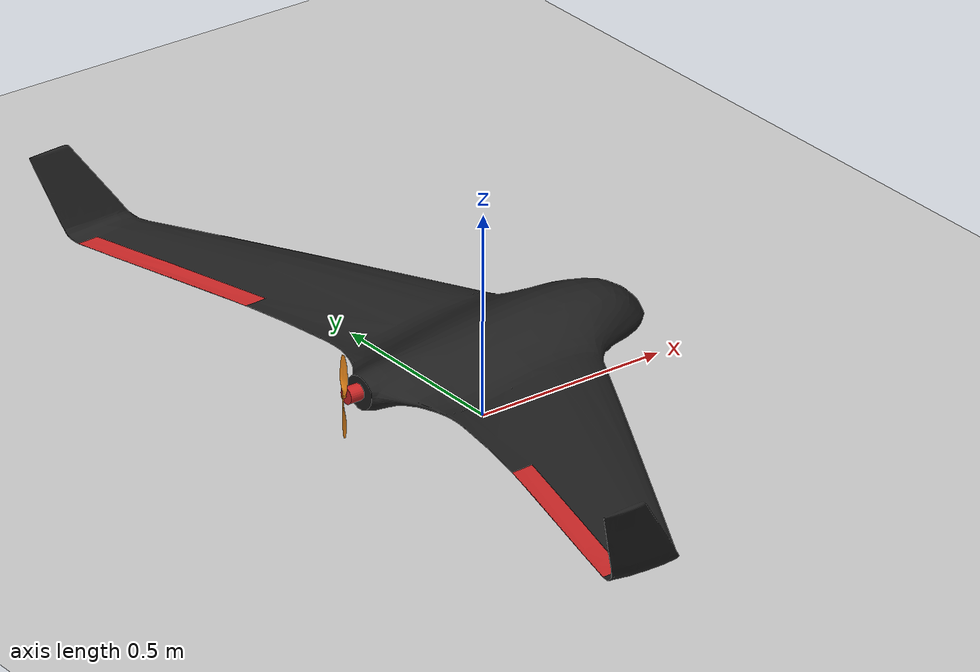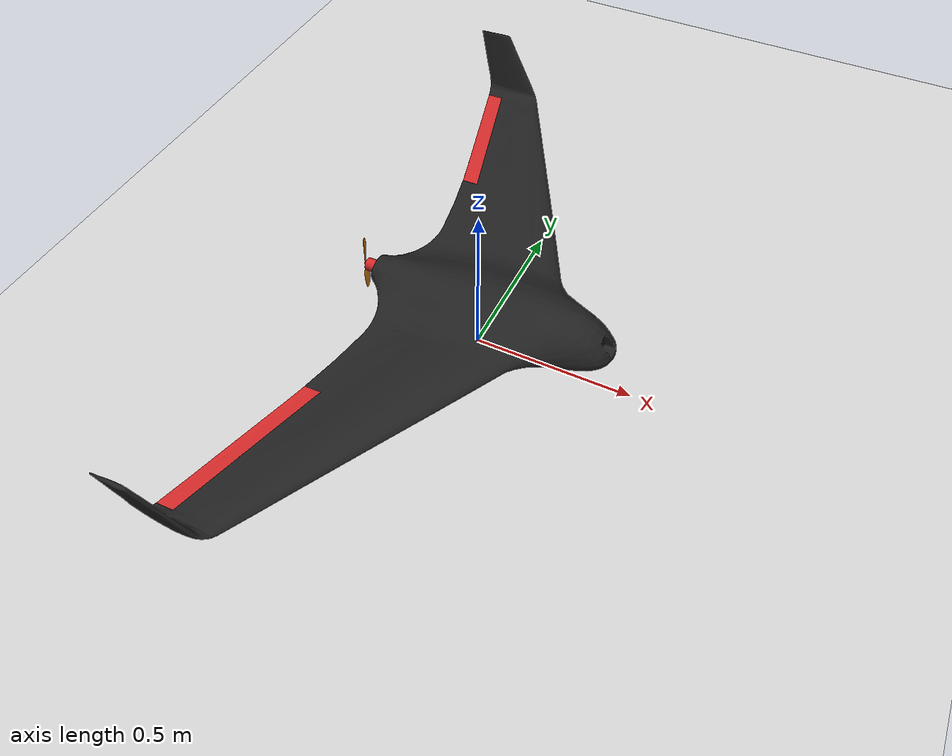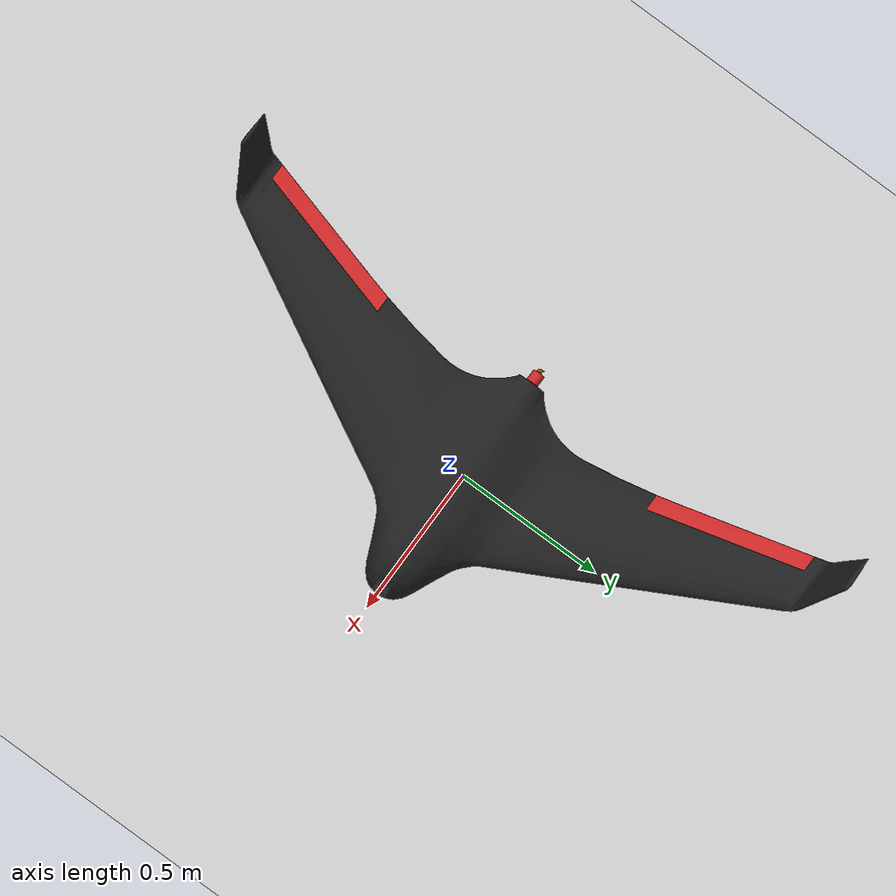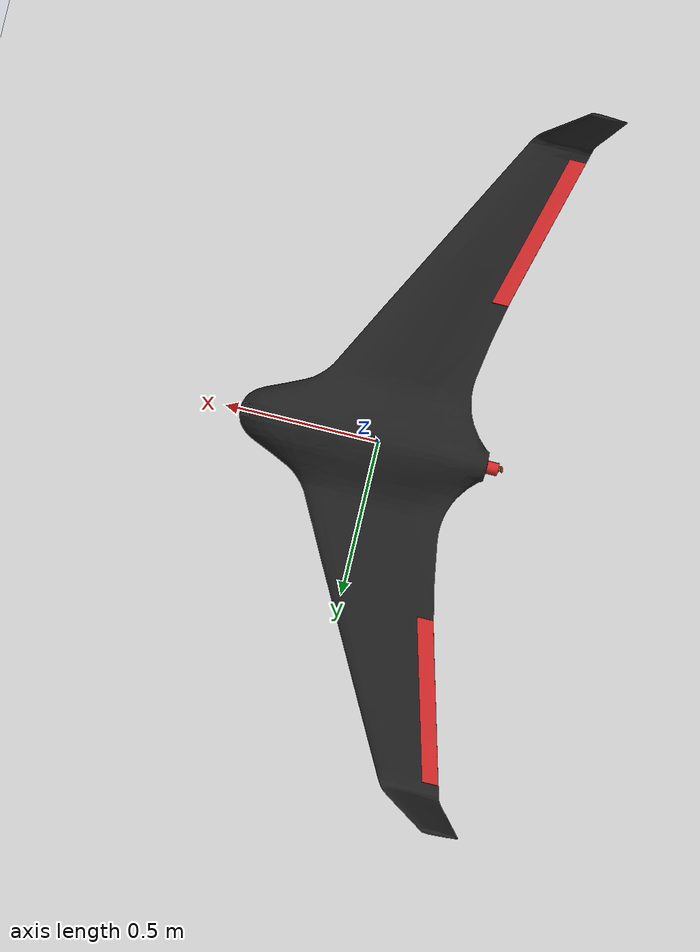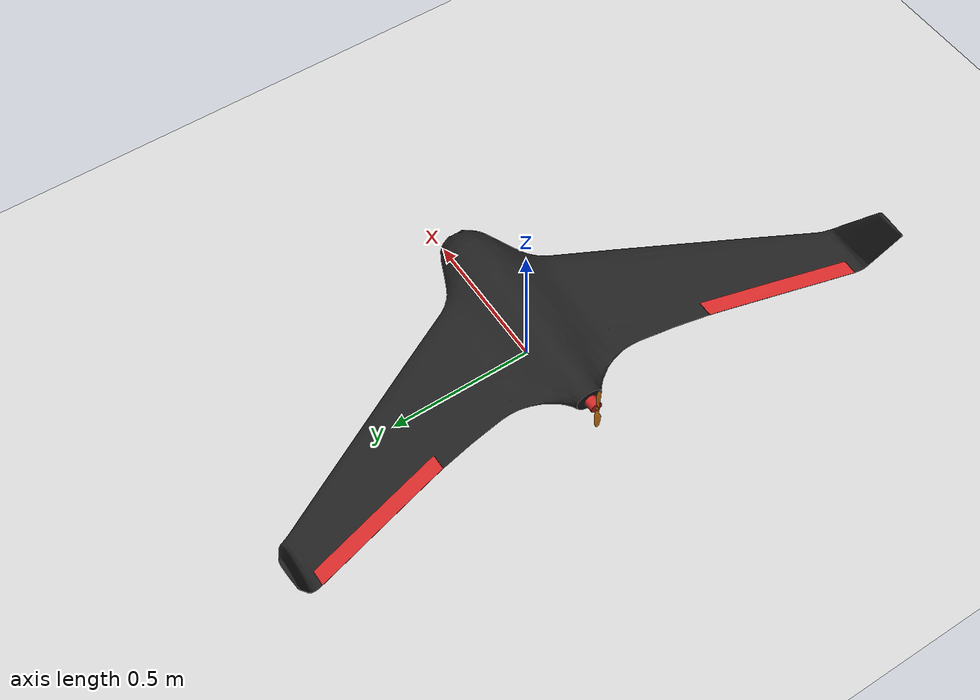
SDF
<sdf version="1.6">
 <world name="default">
  <model name="ground_plane">
   <static>1</static>
   <link name="link">
    <collision name="collision">
     <geometry><plane><normal>0 0 1</normal><size>5000 5000</size></plane></geometry>
     <surface><friction><ode><mu>1</mu><mu2>1</mu2></ode></friction></surface>
    </collision>
    <visual name="runway">
     <pose>0 0 0.005 0 -0 0</pose>
     <cast_shadows>0</cast_shadows>
     <geometry><plane><normal>0 0 1</normal><size>1829 45</size></plane></geometry>
     <material>
      <script><uri>file://media/materials/scripts/gazebo.material</uri><name>Gazebo/Runway</name></script>
     </material>
    </visual>
    <visual name="grass">
     <pose>0 0 -0.1 0 -0 0</pose>
     <cast_shadows>0</cast_shadows>
     <geometry><plane><normal>0 0 1</normal><size>5000 5000</size></plane></geometry>
     <material>
      <script><uri>file://media/materials/scripts/gazebo.material</uri><name>Gazebo/Grass</name></script>
     </material>
    </visual>
   </link>
  </model>
  <model name="SkywalkerX8_Red">
   <link name="skywalker_x8_red::cam_link">
    <pose>0 0 0.246 0 -0 0</pose>
    <inertial>
     <mass>0.01</mass>
     <inertia><ixx>0.0001</ixx><iyy>0.0001</iyy><izz>0.0001</izz><ixy>0</ixy><ixz>0</ixz><iyz>0</iyz></inertia>
    </inertial>
    <sensor name="chase_cam_wide" type="camera">
     <pose>-10 0 12 -1.5708 1 0</pose>
     <camera name="__default__">
      <horizontal_fov>1.5</horizontal_fov>
      <image><width>1920</width><height>1080</height></image>
      <clip><near>0.1</near><far>1000</far></clip>
     </camera>
     <always_on>1</always_on>
     <update_rate>60</update_rate>
     <visualize>0</visualize>
    </sensor>
   </link>
   <joint name="skywalker_x8_red::virtual_camera_mount" type="fixed">
    <child>skywalker_x8_red::cam_link</child>
    <parent>skywalker_x8_red::base_link</parent>
    <axis>
     <xyz>0 0 1</xyz>
     <limit><upper>0</upper><lower>0</lower></limit>
     <use_parent_model_frame>0</use_parent_model_frame>
    </axis>
   </joint>
   <link name="skywalker_x8_red::base_link">
    <pose>0 0 0.246 0 -0 0</pose>
    <inertial>
     <mass>4.5</mass>
     <inertia><ixx>0.45</ixx><ixy>0</ixy><ixz>0.06</ixz><iyy>0.325</iyy><iyz>0</iyz><izz>0.75</izz></inertia>
    </inertial>
    <collision name="base_link_collision">
     <pose>0 0 -0.07 0 -0 0</pose>
     <geometry><box><size>0.8 2.15 0.2</size></box></geometry>
    </collision>
    <visual name="base_link_visual">
     <geometry><mesh><uri>model://skywalker_x8/meshes/x8_wing.dae</uri></mesh></geometry>
     <material>
      <diffuse>1 0 0 1</diffuse>
      <specular>1 1 1 1</specular>
      <script><name>Gazebo/Black</name><uri>file://media/materials/scripts/gazebo.material</uri></script>
     </material>
    </visual>
    <visual name="motor">
     <pose>-0.361 0 0 0 1.57 0</pose>
     <geometry><cylinder><length>0.035</length><radius>0.02</radius></cylinder></geometry>
     <material>
      <diffuse>1 1 1 1</diffuse>
      <specular>1 1 1 1</specular>
      <script><name>Gazebo/Red</name><uri>file://media/materials/scripts/gazebo.material</uri></script>
     </material>
    </visual>
   </link>
   <link name="skywalker_x8_red::rotor_pusher">
    <pose>-0.385 0 0.246 0 1.57 0</pose>
    <inertial>
     <mass>0.025</mass>
     <inertia>
      <ixx>9.75e-06</ixx>
      <ixy>0</ixy>
      <ixz>0</ixz>
      <iyy>0.000166704</iyy>
      <iyz>0</iyz>
      <izz>0.000167604</izz>
     </inertia>
    </inertial>
    <collision name="collision">
     <geometry><cylinder><length>0.005</length><radius>0.065</radius></cylinder></geometry>
    </collision>
    <visual name="visual">
     <geometry>
      <mesh><scale>0.8 0.8 0.8</scale><uri>model://skywalker_x8/meshes/iris_prop_ccw.dae</uri></mesh>
     </geometry>
     <material>
      <diffuse>1 1 1 1</diffuse>
      <specular>1 1 1 1</specular>
      <script><name>Gazebo/Orange</name><uri>file://media/materials/scripts/gazebo.material</uri></script>
     </material>
    </visual>
   </link>
   <joint name="skywalker_x8_red::rotor_pusher_joint" type="revolute">
    <child>skywalker_x8_red::rotor_pusher</child>
    <parent>skywalker_x8_red::base_link</parent>
    <axis>
     <xyz>1 0 0</xyz>
     <limit><lower>-1e+16</lower><upper>1e+16</upper></limit>
     <dynamics>
      <damping>0.002</damping>
      <spring_reference>0</spring_reference>
      <spring_stiffness>0</spring_stiffness>
     </dynamics>
     <use_parent_model_frame>1</use_parent_model_frame>
    </axis>
   </joint>
   <link name="skywalker_x8_red::left_elevon">
    <inertial>
     <mass>0.1</mass>
     <inertia>
      <ixx>0.000102319</ixx>
      <ixy>0</ixy>
      <iyy>0.00334417</iyy>
      <ixz>0</ixz>
      <iyz>0</iyz>
      <izz>0.00344607</izz>
     </inertia>
     <pose>-0.3 0.75 -0.005 0 -0 0</pose>
    </inertial>
    <visual name="left_elevon_visual">
     <geometry><mesh><uri>model://skywalker_x8/meshes/x8_elevon_left.dae</uri></mesh></geometry>
     <material>
      <diffuse>1 1 1 1</diffuse>
      <specular>1 1 1 1</specular>
      <script><name>Gazebo/Red</name><uri>file://media/materials/scripts/gazebo.material</uri></script>
     </material>
    </visual>
    <pose>0 0 0.246 0 -0 0</pose>
   </link>
   <joint name="skywalker_x8_red::left_elevon_joint" type="revolute">
    <parent>skywalker_x8_red::base_link</parent>
    <child>skywalker_x8_red::left_elevon</child>
    <pose>-0.27 0.6 -0.005 0 -0 0.265</pose>
    <axis>
     <xyz>0 1 0</xyz>
     <limit><lower>-0.53</lower><upper>0.53</upper></limit>
     <dynamics>
      <damping>0.1</damping>
      <spring_reference>0</spring_reference>
      <spring_stiffness>0</spring_stiffness>
     </dynamics>
     <use_parent_model_frame>0</use_parent_model_frame>
    </axis>
   </joint>
   <link name="skywalker_x8_red::right_elevon">
    <inertial>
     <mass>0.1</mass>
     <inertia>
      <ixx>0.000102319</ixx>
      <ixy>0</ixy>
      <iyy>0.00334417</iyy>
      <ixz>0</ixz>
      <iyz>0</iyz>
      <izz>0.00344607</izz>
     </inertia>
     <pose>-0.3 -0.75 -0.005 0 -0 0</pose>
    </inertial>
    <visual name="right_elevon_visual">
     <geometry><mesh><uri>model://skywalker_x8/meshes/x8_elevon_right.dae</uri></mesh></geometry>
     <material>
      <diffuse>1 1 1 1</diffuse>
      <specular>1 1 1 1</specular>
      <script><name>Gazebo/Red</name><uri>file://media/materials/scripts/gazebo.material</uri></script>
     </material>
    </visual>
    <pose>0 0 0.246 0 -0 0</pose>
   </link>
   <joint name="skywalker_x8_red::right_elevon_joint" type="revolute">
    <parent>skywalker_x8_red::base_link</parent>
    <child>skywalker_x8_red::right_elevon</child>
    <pose>-0.27 -0.6 -0.005 0 0 -0.265</pose>
    <axis>
     <xyz>0 1 0</xyz>
     <limit><lower>-0.53</lower><upper>0.53</upper></limit>
     <dynamics>
      <damping>0.1</damping>
      <spring_reference>0</spring_reference>
      <spring_stiffness>0</spring_stiffness>
     </dynamics>
     <use_parent_model_frame>0</use_parent_model_frame>
    </axis>
   </joint>
   <link name="skywalker_x8_red::imu_link">
    <inertial>
     <mass>0.15</mass>
     <inertia><ixx>1e-05</ixx><ixy>0</ixy><ixz>0</ixz><iyy>2e-05</iyy><iyz>0</iyz><izz>2e-05</izz></inertia>
    </inertial>
    <sensor name="imu_sensor" type="imu">
     <pose>0 0 0 -3.14159 -0 0</pose>
     <always_on>1</always_on>
     <update_rate>1000</update_rate>
     <visualize>1</visualize>
     <topic>__default_topic__</topic>
     <plugin name="imu_plugin" filename="libgazebo_ros_imu_sensor.so">
      <topicName>imu</topicName>
      <bodyName>skywalker_x8_red::imu_link</bodyName>
      <updateRateHZ>10.0</updateRateHZ>
      <gaussianNoise>0.0</gaussianNoise>
      <xyzOffset>0 0 0</xyzOffset>
      <rpyOffset>0 0 0</rpyOffset>
      <frameName>skywalker_x8_red::imu_link</frameName>
      <initialOrientationAsReference>0</initialOrientationAsReference>
     </plugin>
    </sensor>
    <pose>0 0 0.246 0 -0 0</pose>
   </link>
   <joint name="skywalker_x8_red::skywalker_x8/imu_joint" type="revolute">
    <child>skywalker_x8_red::imu_link</child>
    <parent>skywalker_x8_red::base_link</parent>
    <axis>
     <xyz>0 0 1</xyz>
     <limit><lower>0</lower><upper>0</upper><effort>0</effort><velocity>0</velocity></limit>
     <dynamics>
      <damping>1</damping>
      <spring_reference>0</spring_reference>
      <spring_stiffness>0</spring_stiffness>
     </dynamics>
     <use_parent_model_frame>1</use_parent_model_frame>
    </axis>
    <physics>
     <ode><implicit_spring_damper>1</implicit_spring_damper><limit><cfm>0</cfm><erp>0.2</erp></limit></ode>
    </physics>
   </joint>
   <plugin name="x8_elevonleftbody_lift" filename="libLiftDragPlugin.so">
    <a0>0.13</a0>
    <cla>3.7</cla>
    <cda>0.06417112299</cda>
    <cma>-1.8</cma>
    <alpha_stall>0.3391428111</alpha_stall>
    <cla_stall>-3.85</cla_stall>
    <cda_stall>-0.9233984055</cda_stall>
    <cma_stall>0</cma_stall>
    <cp>0.01 0 0</cp>
    <area>0.80</area>
    <air_density>1.2041</air_density>
    <forward>1 0 0</forward>
    <upward>0 0 1</upward>
    <link_name>skywalker_x8_red::base_link</link_name>
   </plugin>
   <plugin name="x8_elevonleft_lift" filename="libLiftDragPlugin.so">
    <a0>0.15</a0>
    <cla>6.8</cla>
    <cda>0.06417112299</cda>
    <cma>-1.8</cma>
    <alpha_stall>0.6391428111</alpha_stall>
    <cla_stall>-3.85</cla_stall>
    <cda_stall>-0.9233984055</cda_stall>
    <cma_stall>0</cma_stall>
    <cp>-0.30 0.75 -0.005</cp>
    <area>0.10</area>
    <air_density>1.2041</air_density>
    <forward>1 0 0</forward>
    <upward>0 0 1</upward>
    <link_name>skywalker_x8_red::left_elevon</link_name>
   </plugin>
   <plugin name="x8_elevonright_lift" filename="libLiftDragPlugin.so">
    <a0>0.15</a0>
    <cla>6.8</cla>
    <cda>0.06417112299</cda>
    <cma>-1.8</cma>
    <alpha_stall>0.6391428111</alpha_stall>
    <cla_stall>-3.85</cla_stall>
    <cda_stall>-0.9233984055</cda_stall>
    <cma_stall>0</cma_stall>
    <cp>-0.30 -0.75 -0.005</cp>
    <area>0.10</area>
    <air_density>1.2041</air_density>
    <forward>1 0 0</forward>
    <upward>0 0 1</upward>
    <link_name>skywalker_x8_red::right_elevon</link_name>
   </plugin>
   <plugin name="x8_propeller1_lift" filename="libLiftDragPlugin.so">
    <a0>0.30</a0>
    <alpha_stall>1.4</alpha_stall>
    <cla>4.2500</cla>
    <cda>0.10</cda>
    <cma>0.00</cma>
    <cla_stall>-0.025</cla_stall>
    <cda_stall>0.0</cda_stall>
    <cma_stall>0.0</cma_stall>
    <area>0.02</area>
    <air_density>1.2041</air_density>
    <cp>0.074205 0 0</cp>
    <forward>0 1 0</forward>
    <upward>0 0 1</upward>
    <link_name>skywalker_x8_red::rotor_pusher</link_name>
   </plugin>
   <plugin name="x8_propeller2_lift" filename="libLiftDragPlugin.so">
    <a0>0.30</a0>
    <alpha_stall>1.4</alpha_stall>
    <cla>4.2500</cla>
    <cda>0.10</cda>
    <cma>0.00</cma>
    <cla_stall>-0.025</cla_stall>
    <cda_stall>0.0</cda_stall>
    <cma_stall>0.0</cma_stall>
    <area>0.02</area>
    <air_density>1.2041</air_density>
    <cp>-0.074205 0 0</cp>
    <forward>0 -1 0</forward>
    <upward>0 0 1</upward>
    <link_name>skywalker_x8_red::rotor_pusher</link_name>
   </plugin>
   <plugin name="left_winglet_lift" filename="libLiftDragPlugin.so">
    <a0>0.0</a0>
    <cla>4.752798721</cla>
    <cda>0.6417112299</cda>
    <cma>-1.8</cma>
    <alpha_stall>0.3391428111</alpha_stall>
    <cla_stall>-3.85</cla_stall>
    <cda_stall>-0.9233984055</cda_stall>
    <cma_stall>0</cma_stall>
    <cp>-0.36 1.04 0.08</cp>
    <area>0.12</area>
    <air_density>1.2041</air_density>
    <forward>1 0 0</forward>
    <upward>0 1 0</upward>
    <link_name>skywalker_x8_red::base_link</link_name>
   </plugin>
   <plugin name="right_winglet_lift" filename="libLiftDragPlugin.so">
    <a0>0.0</a0>
    <cla>4.752798721</cla>
    <cda>0.6417112299</cda>
    <cma>-1.8</cma>
    <alpha_stall>0.3391428111</alpha_stall>
    <cla_stall>-3.85</cla_stall>
    <cda_stall>-0.9233984055</cda_stall>
    <cma_stall>0</cma_stall>
    <cp>-0.36 -1.04 0.08</cp>
    <area>0.12</area>
    <air_density>1.2041</air_density>
    <forward>1 0 0</forward>
    <upward>0 -1 0</upward>
    <link_name>skywalker_x8_red::base_link</link_name>
   </plugin>
   <plugin name="ArduPilotPlugin" filename="libArduPilotPlugin.so">
    <fdm_addr>127.0.0.1</fdm_addr>
    <fdm_port_in>9002</fdm_port_in>
    <fdm_port_out>9003</fdm_port_out>
    <connectionTimeoutMaxCount>5</connectionTimeoutMaxCount>
    <lock_step>1</lock_step>
    <modelXYZToAirplaneXForwardZDown>0 0 0 3.141593 0 0</modelXYZToAirplaneXForwardZDown>
    <gazeboXYZToNED>0 0 0 3.141593 0 0</gazeboXYZToNED>
    <imuName>imu_sensor</imuName>
    <control channel="0">
     <jointName>skywalker_x8_red::left_elevon_joint</jointName>
     <multiplier>1.048</multiplier>
     <offset>-0.5</offset>
     <servo_min>1100</servo_min>
     <servo_max>1900</servo_max>
     <type>POSITION</type>
     <p_gain>10.0</p_gain>
     <i_gain>0</i_gain>
     <d_gain>0</d_gain>
     <i_max>0</i_max>
     <i_min>0</i_min>
     <cmd_max>2.5</cmd_max>
     <cmd_min>-2.5</cmd_min>
    </control>
    <control channel="1">
     <jointName>skywalker_x8_red::right_elevon_joint</jointName>
     <multiplier>1.048</multiplier>
     <offset>-0.5</offset>
     <servo_min>1100</servo_min>
     <servo_max>1900</servo_max>
     <type>POSITION</type>
     <p_gain>10.0</p_gain>
     <i_gain>0</i_gain>
     <d_gain>0</d_gain>
     <i_max>0</i_max>
     <i_min>0</i_min>
     <cmd_max>2.5</cmd_max>
     <cmd_min>-2.5</cmd_min>
    </control>
    <control channel="2">
     <jointName>skywalker_x8_red::rotor_pusher_joint</jointName>
     <multiplier>838</multiplier>
     <offset>0</offset>
     <servo_min>1200</servo_min>
     <servo_max>2000</servo_max>
     <type>VELOCITY</type>
     <p_gain>0.20</p_gain>
     <i_gain>0</i_gain>
     <d_gain>0</d_gain>
     <i_max>0</i_max>
     <i_min>0</i_min>
     <cmd_max>2.5</cmd_max>
     <cmd_min>-2.5</cmd_min>
    </control>
   </plugin>
   <pose>-0.000119 1e-06 -0.076 0 -0 2e-06</pose>
  </model>
 </world>
</sdf>
